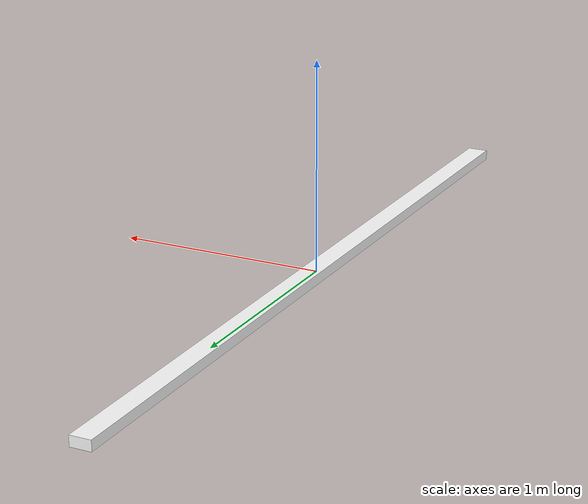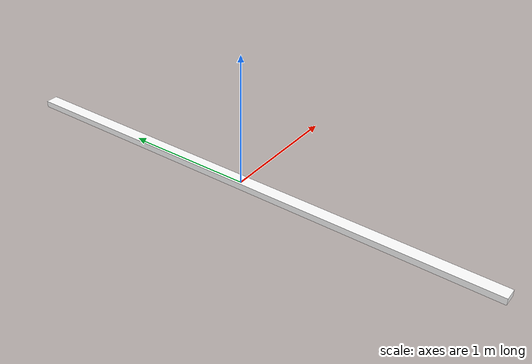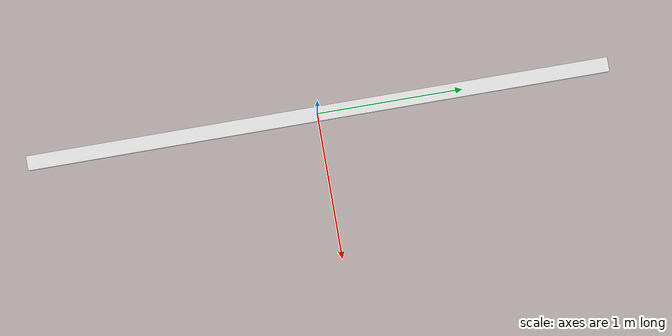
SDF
<?xml version="1.0" ?>
<sdf version="1.6">
  <model name="parking_line">
    <static>true</static>
    <link name="link">
      <visual name="visual">
        <geometry>
          <box>
            <size>0.1 4 0.05</size>   <!-- Adjust size to fit the parking lot -->
          </box>
        </geometry>
        <material>
          <script>
            <uri>/home/nat/gazebo_world/worlds/park_line/materials/scripts</uri>
            <name>ParkingLineMaterial</name>
            <uri>/home/nat/gazebo_world/worlds/park_line/materials/textures</uri>
          </script>
          <ambient> 1 1 1 1  </ambient>
          <diffuse> 1 1 1 1  </diffuse>
          <specular> 0.5 0.5 0.5 1 </specular>
          <emissive> 0 0 0 0 </emissive>
        </material>
      </visual>
      <collision name="collision">
        <geometry>
          <box>
            <size>0.1 4 0.05</size>
          </box>
        </geometry>
      </collision>
    </link>
  </model>
</sdf>
